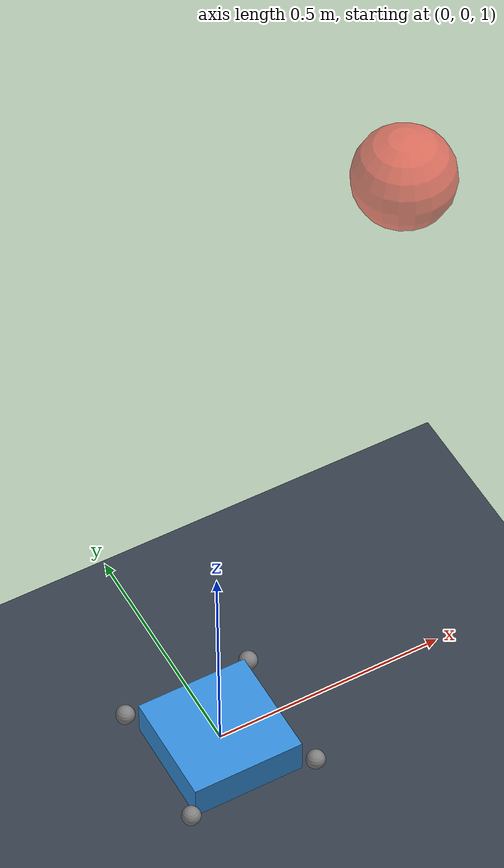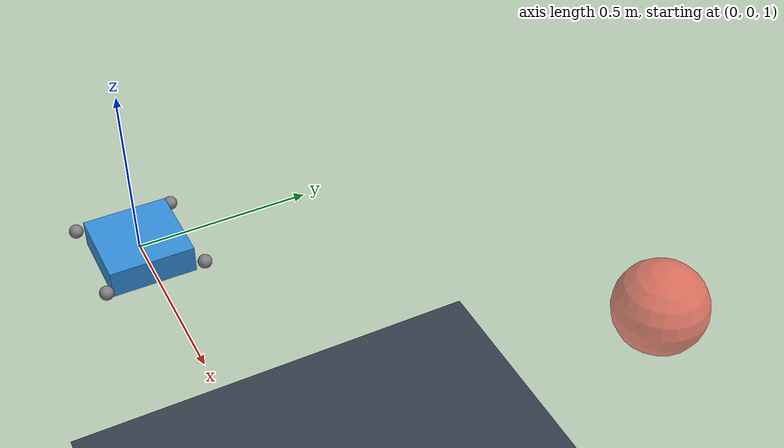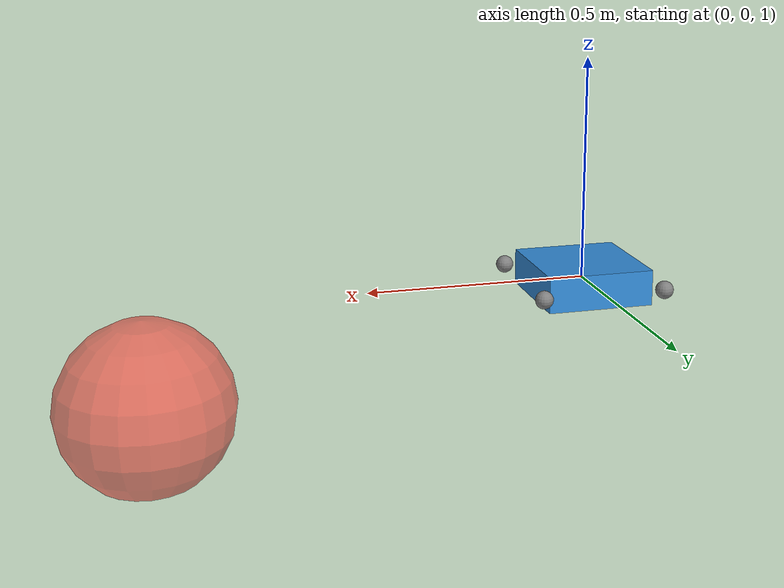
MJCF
<mujoco model="swarm_drone">
  <option timestep="0.01" integrator="RK4" gravity="0 0 -9.81"/>

  <default>
    <geom contype="1" conaffinity="1" friction="0.5 0.1 0.1"/>
    <motor ctrllimited="true"/>
  </default>

  <asset>
    <texture type="skybox" builtin="gradient" rgb1="0.35 0.55 0.75" rgb2="0.05 0.05 0.1" width="512" height="512"/>
    <texture name="grid" type="2d" builtin="checker" width="512" height="512" rgb1="0.25 0.3 0.35" rgb2="0.15 0.18 0.22"/>
    <material name="grid" texture="grid" texrepeat="10 10" reflectance="0.15"/>
    <material name="drone_mat" rgba="0.2 0.55 0.85 1"/>
    <material name="waypoint_mat" rgba="1.0 0.25 0.2 0.6"/>
  </asset>

  <worldbody>
    <light pos="0 0 4" dir="0 0 -1" diffuse="0.9 0.9 0.9"/>
    <geom name="floor" type="plane" size="5 5 0.1" material="grid"/>

    <body name="drone" pos="0 0 1">
      <freejoint name="drone_free"/>
      <inertial pos="0 0 0" mass="1.0" diaginertia="0.02 0.02 0.04"/>
      <geom name="body" type="box" size="0.12 0.12 0.04" material="drone_mat"/>
      <site name="motor_fl" pos="0.14 0.14 0" size="0.02"/>
      <site name="motor_fr" pos="0.14 -0.14 0" size="0.02"/>
      <site name="motor_rl" pos="-0.14 0.14 0" size="0.02"/>
      <site name="motor_rr" pos="-0.14 -0.14 0" size="0.02"/>
    </body>

    <site name="waypoint_marker" pos="1 1 1.2" size="0.12" material="waypoint_mat"/>
  </worldbody>

  <actuator>
    <motor name="thrust_fl" site="motor_fl" gear="0 0 1" ctrlrange="0 12"/>
    <motor name="thrust_fr" site="motor_fr" gear="0 0 1" ctrlrange="0 12"/>
    <motor name="thrust_rl" site="motor_rl" gear="0 0 1" ctrlrange="0 12"/>
    <motor name="thrust_rr" site="motor_rr" gear="0 0 1" ctrlrange="0 12"/>
  </actuator>
</mujoco>
